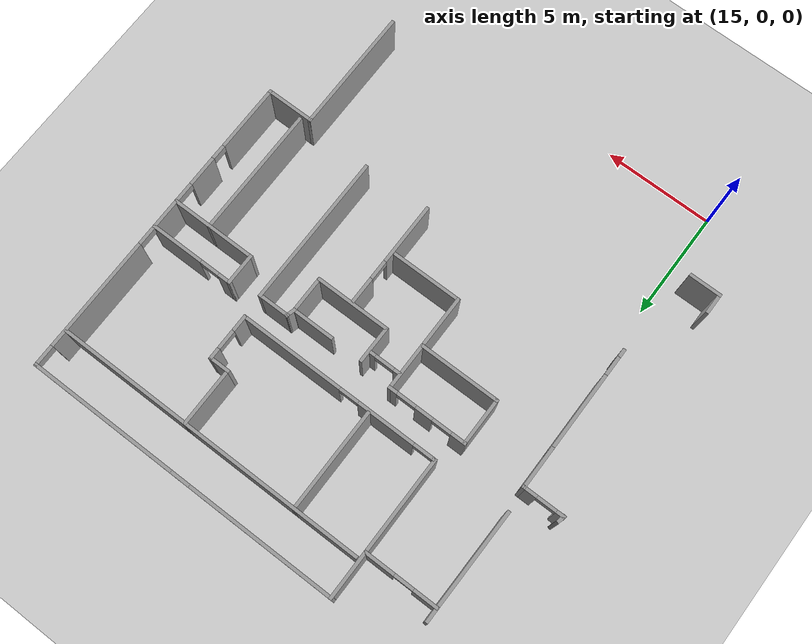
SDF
<sdf version="1.6">
 <world name="default">
  <model name="ground_plane">
   <static>1</static>
   <link name="link">
    <collision name="collision">
     <geometry><plane><normal>0 0 1</normal><size>100 100</size></plane></geometry>
     <surface><friction><ode><mu>100</mu><mu2>50</mu2></ode></friction></surface>
    </collision>
    <visual name="visual">
     <cast_shadows>0</cast_shadows>
     <geometry><plane><normal>0 0 1</normal><size>100 100</size></plane></geometry>
     <material>
      <script><uri>file://media/materials/scripts/gazebo.material</uri><name>Gazebo/Grey</name></script>
     </material>
    </visual>
   </link>
  </model>
  <model name="fin_se1f1.sdf">
   <pose>1.8125 -2.2901 0 0 -0 0</pose>
   <link name="Wall_12">
    <collision name="Wall_12_Collision">
     <geometry><box><size>5.75 0.15 2.5</size></box></geometry>
     <pose>0 0 1.25 0 -0 0</pose>
    </collision>
    <visual name="Wall_12_Visual">
     <pose>0 0 1.25 0 -0 0</pose>
     <geometry><box><size>5.75 0.15 2.5</size></box></geometry>
     <material>
      <script><uri>file://media/materials/scripts/gazebo.material</uri><name>Gazebo/Grey</name></script>
      <ambient>1 1 1 1</ambient>
     </material>
     <meta><layer>0</layer></meta>
    </visual>
    <pose>28.6504 6.82457 0 0 -0 1.5708</pose>
   </link>
   <link name="Wall_13">
    <collision name="Wall_13_Collision">
     <geometry><box><size>2.25 0.15 2.5</size></box></geometry>
     <pose>0 0 1.25 0 -0 0</pose>
    </collision>
    <visual name="Wall_13_Visual">
     <pose>0 0 1.25 0 -0 0</pose>
     <geometry><box><size>2.25 0.15 2.5</size></box></geometry>
     <material>
      <script><uri>file://media/materials/scripts/gazebo.material</uri><name>Gazebo/Grey</name></script>
      <ambient>1 1 1 1</ambient>
     </material>
     <meta><layer>0</layer></meta>
    </visual>
    <pose>29.7004 9.62457 0 0 -0 0</pose>
   </link>
   <link name="Wall_140">
    <collision name="Wall_140_Collision">
     <geometry><box><size>2 0.15 2.5</size></box></geometry>
     <pose>0 0 1.25 0 -0 0</pose>
    </collision>
    <visual name="Wall_140_Visual">
     <pose>0 0 1.25 0 -0 0</pose>
     <geometry><box><size>2 0.15 2.5</size></box></geometry>
     <material>
      <script><uri>file://media/materials/scripts/gazebo.material</uri><name>Gazebo/Grey</name></script>
      <ambient>1 1 1 1</ambient>
     </material>
     <meta><layer>0</layer></meta>
    </visual>
    <pose>12.848 15.6146 0 0 -0 1.5708</pose>
   </link>
   <link name="Wall_141">
    <pose>11.923 16.5396 0 0 -0 3.14159</pose>
    <visual name="Wall_141_Visual_0">
     <pose>-0.657066 0 1.25 0 -0 0</pose>
     <geometry><box><size>0.685867 0.15 2.5</size></box></geometry>
     <material>
      <script><uri>file://media/materials/scripts/gazebo.material</uri><name>Gazebo/Grey</name></script>
      <ambient>1 1 1 1</ambient>
     </material>
     <meta><layer>0</layer></meta>
    </visual>
    <collision name="Wall_141_Collision_0">
     <geometry><box><size>0.685867 0.15 2.5</size></box></geometry>
     <pose>-0.657066 0 1.25 0 -0 0</pose>
    </collision>
    <visual name="Wall_141_Visual_1">
     <pose>0.792934 0 1.25 0 -0 0</pose>
     <geometry><box><size>0.414133 0.15 2.5</size></box></geometry>
     <material>
      <script><uri>file://media/materials/scripts/gazebo.material</uri><name>Gazebo/Grey</name></script>
      <ambient>1 1 1 1</ambient>
     </material>
     <meta><layer>0</layer></meta>
    </visual>
    <collision name="Wall_141_Collision_1">
     <geometry><box><size>0.414133 0.15 2.5</size></box></geometry>
     <pose>0.792934 0 1.25 0 -0 0</pose>
    </collision>
    <visual name="Wall_141_Visual_2">
     <pose>0.135867 0 2.25 0 -0 0</pose>
     <geometry><box><size>0.9 0.15 0.5</size></box></geometry>
     <material>
      <script><uri>file://media/materials/scripts/gazebo.material</uri><name>Gazebo/Grey</name></script>
      <ambient>1 1 1 1</ambient>
     </material>
     <meta><layer>0</layer></meta>
    </visual>
    <collision name="Wall_141_Collision_2">
     <geometry><box><size>0.9 0.15 0.5</size></box></geometry>
     <pose>0.135867 0 2.25 0 -0 0</pose>
    </collision>
   </link>
   <link name="Wall_146">
    <collision name="Wall_146_Collision">
     <geometry><box><size>0.406976 0.15 2.5</size></box></geometry>
     <pose>0 0 1.25 0 -0 0</pose>
    </collision>
    <visual name="Wall_146_Visual">
     <pose>0 0 1.25 0 -0 0</pose>
     <geometry><box><size>0.406976 0.15 2.5</size></box></geometry>
     <material>
      <script><uri>file://media/materials/scripts/gazebo.material</uri><name>Gazebo/Grey</name></script>
      <ambient>1 1 1 1</ambient>
     </material>
     <meta><layer>0</layer></meta>
    </visual>
    <pose>11.0277 16.6646 0 0 0 -1.80434</pose>
   </link>
   <link name="Wall_16">
    <pose>30.7504 16.9246 0 0 -0 1.5708</pose>
    <visual name="Wall_16_Visual_0">
     <pose>-5.81054 0 1.25 0 -0 0</pose>
     <geometry><box><size>3.12893 0.15 2.5</size></box></geometry>
     <material>
      <script><uri>file://media/materials/scripts/gazebo.material</uri><name>Gazebo/Grey</name></script>
      <ambient>1 1 1 1</ambient>
     </material>
     <meta><layer>0</layer></meta>
    </visual>
    <collision name="Wall_16_Collision_0">
     <geometry><box><size>3.12893 0.15 2.5</size></box></geometry>
     <pose>-5.81054 0 1.25 0 -0 0</pose>
    </collision>
    <visual name="Wall_16_Visual_1">
     <pose>-2.86079 0 1.25 0 -0 0</pose>
     <geometry><box><size>1.41306 0.15 2.5</size></box></geometry>
     <material>
      <script><uri>file://media/materials/scripts/gazebo.material</uri><name>Gazebo/Grey</name></script>
      <ambient>1 1 1 1</ambient>
     </material>
     <meta><layer>0</layer></meta>
    </visual>
    <collision name="Wall_16_Collision_1">
     <geometry><box><size>1.41306 0.15 2.5</size></box></geometry>
     <pose>-2.86079 0 1.25 0 -0 0</pose>
    </collision>
    <visual name="Wall_16_Visual_2">
     <pose>-0.547733 0 1.25 0 -0 0</pose>
     <geometry><box><size>1.41306 0.15 2.5</size></box></geometry>
     <material>
      <script><uri>file://media/materials/scripts/gazebo.material</uri><name>Gazebo/Grey</name></script>
      <ambient>1 1 1 1</ambient>
     </material>
     <meta><layer>0</layer></meta>
    </visual>
    <collision name="Wall_16_Collision_2">
     <geometry><box><size>1.41306 0.15 2.5</size></box></geometry>
     <pose>-0.547733 0 1.25 0 -0 0</pose>
    </collision>
    <visual name="Wall_16_Visual_3">
     <pose>3.70629 0 1.25 0 -0 0</pose>
     <geometry><box><size>5.29498 0.15 2.5</size></box></geometry>
     <material>
      <script><uri>file://media/materials/scripts/gazebo.material</uri><name>Gazebo/Grey</name></script>
      <ambient>1 1 1 1</ambient>
     </material>
     <meta><layer>0</layer></meta>
    </visual>
    <collision name="Wall_16_Collision_3">
     <geometry><box><size>5.29498 0.15 2.5</size></box></geometry>
     <pose>3.70629 0 1.25 0 -0 0</pose>
    </collision>
    <visual name="Wall_16_Visual_4">
     <pose>7.31439 0 1.25 0 -0 0</pose>
     <geometry><box><size>0.121222 0.15 2.5</size></box></geometry>
     <material>
      <script><uri>file://media/materials/scripts/gazebo.material</uri><name>Gazebo/Grey</name></script>
      <ambient>1 1 1 1</ambient>
     </material>
     <meta><layer>0</layer></meta>
    </visual>
    <collision name="Wall_16_Collision_4">
     <geometry><box><size>0.121222 0.15 2.5</size></box></geometry>
     <pose>7.31439 0 1.25 0 -0 0</pose>
    </collision>
    <visual name="Wall_16_Visual_5">
     <pose>-3.9067 0 2.25 0 -0 0</pose>
     <geometry><box><size>0.678751 0.15 0.5</size></box></geometry>
     <material>
      <script><uri>file://media/materials/scripts/gazebo.material</uri><name>Gazebo/Grey</name></script>
      <ambient>1 1 1 1</ambient>
     </material>
     <meta><layer>0</layer></meta>
    </visual>
    <collision name="Wall_16_Collision_5">
     <geometry><box><size>0.678751 0.15 0.5</size></box></geometry>
     <pose>-3.9067 0 2.25 0 -0 0</pose>
    </collision>
    <visual name="Wall_16_Visual_6">
     <pose>-1.70426 0 2.25 0 -0 0</pose>
     <geometry><box><size>0.9 0.15 0.5</size></box></geometry>
     <material>
      <script><uri>file://media/materials/scripts/gazebo.material</uri><name>Gazebo/Grey</name></script>
      <ambient>1 1 1 1</ambient>
     </material>
     <meta><layer>0</layer></meta>
    </visual>
    <collision name="Wall_16_Collision_6">
     <geometry><box><size>0.9 0.15 0.5</size></box></geometry>
     <pose>-1.70426 0 2.25 0 -0 0</pose>
    </collision>
    <visual name="Wall_16_Visual_7">
     <pose>0.608797 0 2.25 0 -0 0</pose>
     <geometry><box><size>0.9 0.15 0.5</size></box></geometry>
     <material>
      <script><uri>file://media/materials/scripts/gazebo.material</uri><name>Gazebo/Grey</name></script>
      <ambient>1 1 1 1</ambient>
     </material>
     <meta><layer>0</layer></meta>
    </visual>
    <collision name="Wall_16_Collision_7">
     <geometry><box><size>0.9 0.15 0.5</size></box></geometry>
     <pose>0.608797 0 2.25 0 -0 0</pose>
    </collision>
    <visual name="Wall_16_Visual_8">
     <pose>6.80378 0 2.25 0 -0 0</pose>
     <geometry><box><size>0.9 0.15 0.5</size></box></geometry>
     <material>
      <script><uri>file://media/materials/scripts/gazebo.material</uri><name>Gazebo/Grey</name></script>
      <ambient>1 1 1 1</ambient>
     </material>
     <meta><layer>0</layer></meta>
    </visual>
    <collision name="Wall_16_Collision_8">
     <geometry><box><size>0.9 0.15 0.5</size></box></geometry>
     <pose>6.80378 0 2.25 0 -0 0</pose>
    </collision>
   </link>
   <link name="Wall_17">
    <pose>23.4504 24.2246 0 0 -0 3.14159</pose>
    <visual name="Wall_17_Visual_0">
     <pose>-3.90372 0 1.25 0 -0 0</pose>
     <geometry><box><size>6.94256 0.15 2.5</size></box></geometry>
     <material>
      <script><uri>file://media/materials/scripts/gazebo.material</uri><name>Gazebo/Grey</name></script>
      <ambient>1 1 1 1</ambient>
     </material>
     <meta><layer>0</layer></meta>
    </visual>
    <collision name="Wall_17_Collision_0">
     <geometry><box><size>6.94256 0.15 2.5</size></box></geometry>
     <pose>-3.90372 0 1.25 0 -0 0</pose>
    </collision>
    <visual name="Wall_17_Visual_1">
     <pose>3.92128 0 1.25 0 -0 0</pose>
     <geometry><box><size>6.90744 0.15 2.5</size></box></geometry>
     <material>
      <script><uri>file://media/materials/scripts/gazebo.material</uri><name>Gazebo/Grey</name></script>
      <ambient>1 1 1 1</ambient>
     </material>
     <meta><layer>0</layer></meta>
    </visual>
    <collision name="Wall_17_Collision_1">
     <geometry><box><size>6.90744 0.15 2.5</size></box></geometry>
     <pose>3.92128 0 1.25 0 -0 0</pose>
    </collision>
    <visual name="Wall_17_Visual_2">
     <pose>0.017557 0 2.25 0 -0 0</pose>
     <geometry><box><size>0.9 0.15 0.5</size></box></geometry>
     <material>
      <script><uri>file://media/materials/scripts/gazebo.material</uri><name>Gazebo/Grey</name></script>
      <ambient>1 1 1 1</ambient>
     </material>
     <meta><layer>0</layer></meta>
    </visual>
    <collision name="Wall_17_Collision_2">
     <geometry><box><size>0.9 0.15 0.5</size></box></geometry>
     <pose>0.017557 0 2.25 0 -0 0</pose>
    </collision>
   </link>
   <link name="Wall_18">
    <collision name="Wall_18_Collision">
     <geometry><box><size>2.25 0.15 2.5</size></box></geometry>
     <pose>0 0 1.25 0 -0 0</pose>
    </collision>
    <visual name="Wall_18_Visual">
     <pose>0 0 1.25 0 -0 0</pose>
     <geometry><box><size>2.25 0.15 2.5</size></box></geometry>
     <material>
      <script><uri>file://media/materials/scripts/gazebo.material</uri><name>Gazebo/Grey</name></script>
      <ambient>1 1 1 1</ambient>
     </material>
     <meta><layer>0</layer></meta>
    </visual>
    <pose>16.1504 23.1746 0 0 0 -1.5708</pose>
   </link>
   <link name="Wall_19">
    <pose>14.4754 22.1246 0 0 -0 3.14159</pose>
    <visual name="Wall_19_Visual_0">
     <pose>-1.03305 0 1.25 0 -0 0</pose>
     <geometry><box><size>1.43389 0.15 2.5</size></box></geometry>
     <material>
      <script><uri>file://media/materials/scripts/gazebo.material</uri><name>Gazebo/Grey</name></script>
      <ambient>1 1 1 1</ambient>
     </material>
     <meta><layer>0</layer></meta>
    </visual>
    <collision name="Wall_19_Collision_0">
     <geometry><box><size>1.43389 0.15 2.5</size></box></geometry>
     <pose>-1.03305 0 1.25 0 -0 0</pose>
    </collision>
    <visual name="Wall_19_Visual_1">
     <pose>1.16695 0 1.25 0 -0 0</pose>
     <geometry><box><size>1.16611 0.15 2.5</size></box></geometry>
     <material>
      <script><uri>file://media/materials/scripts/gazebo.material</uri><name>Gazebo/Grey</name></script>
      <ambient>1 1 1 1</ambient>
     </material>
     <meta><layer>0</layer></meta>
    </visual>
    <collision name="Wall_19_Collision_1">
     <geometry><box><size>1.16611 0.15 2.5</size></box></geometry>
     <pose>1.16695 0 1.25 0 -0 0</pose>
    </collision>
    <visual name="Wall_19_Visual_2">
     <pose>0.133892 0 2.25 0 -0 0</pose>
     <geometry><box><size>0.9 0.15 0.5</size></box></geometry>
     <material>
      <script><uri>file://media/materials/scripts/gazebo.material</uri><name>Gazebo/Grey</name></script>
      <ambient>1 1 1 1</ambient>
     </material>
     <meta><layer>0</layer></meta>
    </visual>
    <collision name="Wall_19_Collision_2">
     <geometry><box><size>0.9 0.15 0.5</size></box></geometry>
     <pose>0.133892 0 2.25 0 -0 0</pose>
    </collision>
   </link>
   <link name="Wall_2">
    <collision name="Wall_2_Collision">
     <geometry><box><size>1 0.15 2.5</size></box></geometry>
     <pose>0 0 1.25 0 -0 0</pose>
    </collision>
    <visual name="Wall_2_Visual">
     <pose>0 0 1.25 0 -0 0</pose>
     <geometry><box><size>1 0.15 2.5</size></box></geometry>
     <material>
      <script><uri>file://media/materials/scripts/gazebo.material</uri><name>Gazebo/Grey</name></script>
      <ambient>1 1 1 1</ambient>
     </material>
     <meta><layer>0</layer></meta>
    </visual>
    <pose>11.1004 6.09957 0 0 0 -1.5708</pose>
   </link>
   <link name="Wall_20">
    <collision name="Wall_20_Collision">
     <geometry><box><size>0.75 0.15 2.5</size></box></geometry>
     <pose>0 0 1.25 0 -0 0</pose>
    </collision>
    <visual name="Wall_20_Visual">
     <pose>0 0 1.25 0 -0 0</pose>
     <geometry><box><size>0.75 0.15 2.5</size></box></geometry>
     <material>
      <script><uri>file://media/materials/scripts/gazebo.material</uri><name>Gazebo/Grey</name></script>
      <ambient>1 1 1 1</ambient>
     </material>
     <meta><layer>0</layer></meta>
    </visual>
    <pose>12.8004 22.4246 0 0 -0 1.5708</pose>
   </link>
   <link name="Wall_233">
    <pose>19.9645 15.9042 0 0 -0 0</pose>
    <visual name="Wall_233_Visual_0">
     <pose>-0.585512 0 1.25 0 -0 0</pose>
     <geometry><box><size>0.328976 0.15 2.5</size></box></geometry>
     <material>
      <script><uri>file://media/materials/scripts/gazebo.material</uri><name>Gazebo/Grey</name></script>
      <ambient>1 1 1 1</ambient>
     </material>
     <meta><layer>0</layer></meta>
    </visual>
    <collision name="Wall_233_Collision_0">
     <geometry><box><size>0.328976 0.15 2.5</size></box></geometry>
     <pose>-0.585512 0 1.25 0 -0 0</pose>
    </collision>
    <visual name="Wall_233_Visual_1">
     <pose>0.614488 0 1.25 0 -0 0</pose>
     <geometry><box><size>0.271024 0.15 2.5</size></box></geometry>
     <material>
      <script><uri>file://media/materials/scripts/gazebo.material</uri><name>Gazebo/Grey</name></script>
      <ambient>1 1 1 1</ambient>
     </material>
     <meta><layer>0</layer></meta>
    </visual>
    <collision name="Wall_233_Collision_1">
     <geometry><box><size>0.271024 0.15 2.5</size></box></geometry>
     <pose>0.614488 0 1.25 0 -0 0</pose>
    </collision>
    <visual name="Wall_233_Visual_2">
     <pose>0.028976 0 2.25 0 -0 0</pose>
     <geometry><box><size>0.9 0.15 0.5</size></box></geometry>
     <material>
      <script><uri>file://media/materials/scripts/gazebo.material</uri><name>Gazebo/Grey</name></script>
      <ambient>1 1 1 1</ambient>
     </material>
     <meta><layer>0</layer></meta>
    </visual>
    <collision name="Wall_233_Collision_2">
     <geometry><box><size>0.9 0.15 0.5</size></box></geometry>
     <pose>0.028976 0 2.25 0 -0 0</pose>
    </collision>
   </link>
   <link name="Wall_3">
    <collision name="Wall_3_Collision">
     <geometry><box><size>1.5 0.15 2.5</size></box></geometry>
     <pose>0 0 1.25 0 -0 0</pose>
    </collision>
    <visual name="Wall_3_Visual">
     <pose>0 0 1.25 0 -0 0</pose>
     <geometry><box><size>1.5 0.15 2.5</size></box></geometry>
     <material>
      <script><uri>file://media/materials/scripts/gazebo.material</uri><name>Gazebo/Grey</name></script>
      <ambient>1 1 1 1</ambient>
     </material>
     <meta><layer>0</layer></meta>
    </visual>
    <pose>11.7754 5.67457 0 0 -0 0</pose>
   </link>
   <link name="Wall_32">
    <collision name="Wall_32_Collision">
     <geometry><box><size>4 0.15 2.5</size></box></geometry>
     <pose>0 0 1.25 0 -0 0</pose>
    </collision>
    <visual name="Wall_32_Visual">
     <pose>0 0 1.25 0 -0 0</pose>
     <geometry><box><size>4 0.15 2.5</size></box></geometry>
     <material>
      <script><uri>file://media/materials/scripts/gazebo.material</uri><name>Gazebo/Grey</name></script>
      <ambient>1 1 1 1</ambient>
     </material>
     <meta><layer>0</layer></meta>
    </visual>
    <pose>28.8116 15.7048 0 0 -0 3.14159</pose>
   </link>
   <link name="Wall_33">
    <collision name="Wall_33_Collision">
     <geometry><box><size>1.5 0.15 2.5</size></box></geometry>
     <pose>0 0 1.25 0 -0 0</pose>
    </collision>
    <visual name="Wall_33_Visual">
     <pose>0 0 1.25 0 -0 0</pose>
     <geometry><box><size>1.5 0.15 2.5</size></box></geometry>
     <material>
      <script><uri>file://media/materials/scripts/gazebo.material</uri><name>Gazebo/Grey</name></script>
      <ambient>1 1 1 1</ambient>
     </material>
     <meta><layer>0</layer></meta>
    </visual>
    <pose>26.8866 16.3798 0 0 -0 1.5708</pose>
   </link>
   <link name="Wall_34">
    <pose>28.8116 17.0548 0 0 -0 0</pose>
    <visual name="Wall_34_Visual_0">
     <pose>-1.6918 0 1.25 0 -0 0</pose>
     <geometry><box><size>0.616404 0.15 2.5</size></box></geometry>
     <material>
      <script><uri>file://media/materials/scripts/gazebo.material</uri><name>Gazebo/Grey</name></script>
      <ambient>1 1 1 1</ambient>
     </material>
     <meta><layer>0</layer></meta>
    </visual>
    <collision name="Wall_34_Collision_0">
     <geometry><box><size>0.616404 0.15 2.5</size></box></geometry>
     <pose>-1.6918 0 1.25 0 -0 0</pose>
    </collision>
    <visual name="Wall_34_Visual_1">
     <pose>0.758202 0 1.25 0 -0 0</pose>
     <geometry><box><size>2.4836 0.15 2.5</size></box></geometry>
     <material>
      <script><uri>file://media/materials/scripts/gazebo.material</uri><name>Gazebo/Grey</name></script>
      <ambient>1 1 1 1</ambient>
     </material>
     <meta><layer>0</layer></meta>
    </visual>
    <collision name="Wall_34_Collision_1">
     <geometry><box><size>2.4836 0.15 2.5</size></box></geometry>
     <pose>0.758202 0 1.25 0 -0 0</pose>
    </collision>
    <visual name="Wall_34_Visual_2">
     <pose>-0.933596 0 2.25 0 -0 0</pose>
     <geometry><box><size>0.9 0.15 0.5</size></box></geometry>
     <material>
      <script><uri>file://media/materials/scripts/gazebo.material</uri><name>Gazebo/Grey</name></script>
      <ambient>1 1 1 1</ambient>
     </material>
     <meta><layer>0</layer></meta>
    </visual>
    <collision name="Wall_34_Collision_2">
     <geometry><box><size>0.9 0.15 0.5</size></box></geometry>
     <pose>-0.933596 0 2.25 0 -0 0</pose>
    </collision>
   </link>
   <link name="Wall_36">
    <collision name="Wall_36_Collision">
     <geometry><box><size>6 0.15 2.5</size></box></geometry>
     <pose>0 0 1.25 0 -0 0</pose>
    </collision>
    <visual name="Wall_36_Visual">
     <pose>0 0 1.25 0 -0 0</pose>
     <geometry><box><size>6 0.15 2.5</size></box></geometry>
     <material>
      <script><uri>file://media/materials/scripts/gazebo.material</uri><name>Gazebo/Grey</name></script>
      <ambient>1 1 1 1</ambient>
     </material>
     <meta><layer>0</layer></meta>
    </visual>
    <pose>29.0138 12.7798 0 0 0 -1.5708</pose>
   </link>
   <link name="Wall_38">
    <pose>17.4309 16.5662 0 0 -0 3.14159</pose>
    <visual name="Wall_38_Visual_0">
     <pose>-1.65937 0 1.25 0 -0 0</pose>
     <geometry><box><size>0.431262 0.15 2.5</size></box></geometry>
     <material>
      <script><uri>file://media/materials/scripts/gazebo.material</uri><name>Gazebo/Grey</name></script>
      <ambient>1 1 1 1</ambient>
     </material>
     <meta><layer>0</layer></meta>
    </visual>
    <collision name="Wall_38_Collision_0">
     <geometry><box><size>0.431262 0.15 2.5</size></box></geometry>
     <pose>-1.65937 0 1.25 0 -0 0</pose>
    </collision>
    <visual name="Wall_38_Visual_1">
     <pose>-0.138911 0 1.25 0 -0 0</pose>
     <geometry><box><size>0.809654 0.15 2.5</size></box></geometry>
     <material>
      <script><uri>file://media/materials/scripts/gazebo.material</uri><name>Gazebo/Grey</name></script>
      <ambient>1 1 1 1</ambient>
     </material>
     <meta><layer>0</layer></meta>
    </visual>
    <collision name="Wall_38_Collision_1">
     <geometry><box><size>0.809654 0.15 2.5</size></box></geometry>
     <pose>-0.138911 0 1.25 0 -0 0</pose>
    </collision>
    <visual name="Wall_38_Visual_2">
     <pose>1.52046 0 1.25 0 -0 0</pose>
     <geometry><box><size>0.709084 0.15 2.5</size></box></geometry>
     <material>
      <script><uri>file://media/materials/scripts/gazebo.material</uri><name>Gazebo/Grey</name></script>
      <ambient>1 1 1 1</ambient>
     </material>
     <meta><layer>0</layer></meta>
    </visual>
    <collision name="Wall_38_Collision_2">
     <geometry><box><size>0.709084 0.15 2.5</size></box></geometry>
     <pose>1.52046 0 1.25 0 -0 0</pose>
    </collision>
    <visual name="Wall_38_Visual_3">
     <pose>-0.993738 0 2.25 0 -0 0</pose>
     <geometry><box><size>0.9 0.15 0.5</size></box></geometry>
     <material>
      <script><uri>file://media/materials/scripts/gazebo.material</uri><name>Gazebo/Grey</name></script>
      <ambient>1 1 1 1</ambient>
     </material>
     <meta><layer>0</layer></meta>
    </visual>
    <collision name="Wall_38_Collision_3">
     <geometry><box><size>0.9 0.15 0.5</size></box></geometry>
     <pose>-0.993738 0 2.25 0 -0 0</pose>
    </collision>
    <visual name="Wall_38_Visual_4">
     <pose>0.715916 0 2.25 0 -0 0</pose>
     <geometry><box><size>0.9 0.15 0.5</size></box></geometry>
     <material>
      <script><uri>file://media/materials/scripts/gazebo.material</uri><name>Gazebo/Grey</name></script>
      <ambient>1 1 1 1</ambient>
     </material>
     <meta><layer>0</layer></meta>
    </visual>
    <collision name="Wall_38_Collision_4">
     <geometry><box><size>0.9 0.15 0.5</size></box></geometry>
     <pose>0.715916 0 2.25 0 -0 0</pose>
    </collision>
   </link>
   <link name="Wall_39">
    <collision name="Wall_39_Collision">
     <geometry><box><size>2.25 0.15 2.5</size></box></geometry>
     <pose>0 0 1.25 0 -0 0</pose>
    </collision>
    <visual name="Wall_39_Visual">
     <pose>0 0 1.25 0 -0 0</pose>
     <geometry><box><size>2.25 0.15 2.5</size></box></geometry>
     <material>
      <script><uri>file://media/materials/scripts/gazebo.material</uri><name>Gazebo/Grey</name></script>
      <ambient>1 1 1 1</ambient>
     </material>
     <meta><layer>0</layer></meta>
    </visual>
    <pose>15.6309 15.5162 0 0 0 -1.5708</pose>
   </link>
   <link name="Wall_40">
    <collision name="Wall_40_Collision">
     <geometry><box><size>3.75 0.15 2.5</size></box></geometry>
     <pose>0 0 1.25 0 -0 0</pose>
    </collision>
    <visual name="Wall_40_Visual">
     <pose>0 0 1.25 0 -0 0</pose>
     <geometry><box><size>3.75 0.15 2.5</size></box></geometry>
     <material>
      <script><uri>file://media/materials/scripts/gazebo.material</uri><name>Gazebo/Grey</name></script>
      <ambient>1 1 1 1</ambient>
     </material>
     <meta><layer>0</layer></meta>
    </visual>
    <pose>17.4309 14.4662 0 0 -0 0</pose>
   </link>
   <link name="Wall_41">
    <collision name="Wall_41_Collision">
     <geometry><box><size>2.25 0.15 2.5</size></box></geometry>
     <pose>0 0 1.25 0 -0 0</pose>
    </collision>
    <visual name="Wall_41_Visual">
     <pose>0 0 1.25 0 -0 0</pose>
     <geometry><box><size>2.25 0.15 2.5</size></box></geometry>
     <material>
      <script><uri>file://media/materials/scripts/gazebo.material</uri><name>Gazebo/Grey</name></script>
      <ambient>1 1 1 1</ambient>
     </material>
     <meta><layer>0</layer></meta>
    </visual>
    <pose>19.2309 15.5162 0 0 -0 1.5708</pose>
   </link>
   <link name="Wall_43">
    <collision name="Wall_43_Collision">
     <geometry><box><size>1.75 0.15 2.5</size></box></geometry>
     <pose>0 0 1.25 0 -0 0</pose>
    </collision>
    <visual name="Wall_43_Visual">
     <pose>0 0 1.25 0 -0 0</pose>
     <geometry><box><size>1.75 0.15 2.5</size></box></geometry>
     <material>
      <script><uri>file://media/materials/scripts/gazebo.material</uri><name>Gazebo/Grey</name></script>
      <ambient>1 1 1 1</ambient>
     </material>
     <meta><layer>0</layer></meta>
    </visual>
    <pose>20.7691 15.5816 0 0 0 -1.5708</pose>
   </link>
   <link name="Wall_44">
    <collision name="Wall_44_Collision">
     <geometry><box><size>3.5 0.15 2.5</size></box></geometry>
     <pose>0 0 1.25 0 -0 0</pose>
    </collision>
    <visual name="Wall_44_Visual">
     <pose>0 0 1.25 0 -0 0</pose>
     <geometry><box><size>3.5 0.15 2.5</size></box></geometry>
     <material>
      <script><uri>file://media/materials/scripts/gazebo.material</uri><name>Gazebo/Grey</name></script>
      <ambient>1 1 1 1</ambient>
     </material>
     <meta><layer>0</layer></meta>
    </visual>
    <pose>22.4441 14.7816 0 0 -0 0</pose>
   </link>
   <link name="Wall_45">
    <collision name="Wall_45_Collision">
     <geometry><box><size>1.75 0.15 2.5</size></box></geometry>
     <pose>0 0 1.25 0 -0 0</pose>
    </collision>
    <visual name="Wall_45_Visual">
     <pose>0 0 1.25 0 -0 0</pose>
     <geometry><box><size>1.75 0.15 2.5</size></box></geometry>
     <material>
      <script><uri>file://media/materials/scripts/gazebo.material</uri><name>Gazebo/Grey</name></script>
      <ambient>1 1 1 1</ambient>
     </material>
     <meta><layer>0</layer></meta>
    </visual>
    <pose>24.1191 15.5816 0 0 -0 1.5708</pose>
   </link>
   <link name="Wall_46">
    <collision name="Wall_46_Collision">
     <geometry><box><size>2 0.15 2.5</size></box></geometry>
     <pose>0 0 1.25 0 -0 0</pose>
    </collision>
    <visual name="Wall_46_Visual">
     <pose>0 0 1.25 0 -0 0</pose>
     <geometry><box><size>2 0.15 2.5</size></box></geometry>
     <material>
      <script><uri>file://media/materials/scripts/gazebo.material</uri><name>Gazebo/Grey</name></script>
      <ambient>1 1 1 1</ambient>
     </material>
     <meta><layer>0</layer></meta>
    </visual>
    <pose>23.1941 16.3816 0 0 -0 3.14159</pose>
   </link>
   <link name="Wall_48">
    <collision name="Wall_48_Collision">
     <geometry><box><size>0.5 0.15 2.5</size></box></geometry>
     <pose>0 0 1.25 0 -0 0</pose>
    </collision>
    <visual name="Wall_48_Visual">
     <pose>0 0 1.25 0 -0 0</pose>
     <geometry><box><size>0.5 0.15 2.5</size></box></geometry>
     <material>
      <script><uri>file://media/materials/scripts/gazebo.material</uri><name>Gazebo/Grey</name></script>
      <ambient>1 1 1 1</ambient>
     </material>
     <meta><layer>0</layer></meta>
    </visual>
    <pose>24.1643 16.5507 0 0 -0 1.309</pose>
   </link>
   <link name="Wall_49">
    <collision name="Wall_49_Collision">
     <geometry><box><size>1.5 0.15 2.5</size></box></geometry>
     <pose>0 0 1.25 0 -0 0</pose>
    </collision>
    <visual name="Wall_49_Visual">
     <pose>0 0 1.25 0 -0 0</pose>
     <geometry><box><size>1.5 0.15 2.5</size></box></geometry>
     <material>
      <script><uri>file://media/materials/scripts/gazebo.material</uri><name>Gazebo/Grey</name></script>
      <ambient>1 1 1 1</ambient>
     </material>
     <meta><layer>0</layer></meta>
    </visual>
    <pose>24.8846 16.7197 0 0 -0 0</pose>
   </link>
   <link name="Wall_50">
    <collision name="Wall_50_Collision">
     <geometry><box><size>7 0.15 2.5</size></box></geometry>
     <pose>0 0 1.25 0 -0 0</pose>
    </collision>
    <visual name="Wall_50_Visual">
     <pose>0 0 1.25 0 -0 0</pose>
     <geometry><box><size>7 0.15 2.5</size></box></geometry>
     <material>
      <script><uri>file://media/materials/scripts/gazebo.material</uri><name>Gazebo/Grey</name></script>
      <ambient>1 1 1 1</ambient>
     </material>
     <meta><layer>0</layer></meta>
    </visual>
    <pose>25.5596 13.2947 0 0 0 -1.5708</pose>
   </link>
   <link name="Wall_52">
    <collision name="Wall_52_Collision">
     <geometry><box><size>2.5 0.15 2.5</size></box></geometry>
     <pose>0 0 1.25 0 -0 0</pose>
    </collision>
    <visual name="Wall_52_Visual">
     <pose>0 0 1.25 0 -0 0</pose>
     <geometry><box><size>2.5 0.15 2.5</size></box></geometry>
     <material>
      <script><uri>file://media/materials/scripts/gazebo.material</uri><name>Gazebo/Grey</name></script>
      <ambient>1 1 1 1</ambient>
     </material>
     <meta><layer>0</layer></meta>
    </visual>
    <pose>19.2309 13.2912 0 0 0 -1.5708</pose>
   </link>
   <link name="Wall_53">
    <collision name="Wall_53_Collision">
     <geometry><box><size>3.25 0.15 2.5</size></box></geometry>
     <pose>0 0 1.25 0 -0 0</pose>
    </collision>
    <visual name="Wall_53_Visual">
     <pose>0 0 1.25 0 -0 0</pose>
     <geometry><box><size>3.25 0.15 2.5</size></box></geometry>
     <material>
      <script><uri>file://media/materials/scripts/gazebo.material</uri><name>Gazebo/Grey</name></script>
      <ambient>1 1 1 1</ambient>
     </material>
     <meta><layer>0</layer></meta>
    </visual>
    <pose>20.7809 12.1162 0 0 -0 0</pose>
   </link>
   <link name="Wall_55">
    <pose>22.4918 12.2338 0 0 0 -1.5708</pose>
    <visual name="Wall_55_Visual_0">
     <pose>-1.8821 0 1.25 0 -0 0</pose>
     <geometry><box><size>1.2358 0.15 2.5</size></box></geometry>
     <material>
      <script><uri>file://media/materials/scripts/gazebo.material</uri><name>Gazebo/Grey</name></script>
      <ambient>1 1 1 1</ambient>
     </material>
     <meta><layer>0</layer></meta>
    </visual>
    <collision name="Wall_55_Collision_0">
     <geometry><box><size>1.2358 0.15 2.5</size></box></geometry>
     <pose>-1.8821 0 1.25 0 -0 0</pose>
    </collision>
    <visual name="Wall_55_Visual_1">
     <pose>1.0679 0 1.25 0 -0 0</pose>
     <geometry><box><size>2.8642 0.15 2.5</size></box></geometry>
     <material>
      <script><uri>file://media/materials/scripts/gazebo.material</uri><name>Gazebo/Grey</name></script>
      <ambient>1 1 1 1</ambient>
     </material>
     <meta><layer>0</layer></meta>
    </visual>
    <collision name="Wall_55_Collision_1">
     <geometry><box><size>2.8642 0.15 2.5</size></box></geometry>
     <pose>1.0679 0 1.25 0 -0 0</pose>
    </collision>
    <visual name="Wall_55_Visual_2">
     <pose>-0.814197 0 2.25 0 -0 0</pose>
     <geometry><box><size>0.9 0.15 0.5</size></box></geometry>
     <material>
      <script><uri>file://media/materials/scripts/gazebo.material</uri><name>Gazebo/Grey</name></script>
      <ambient>1 1 1 1</ambient>
     </material>
     <meta><layer>0</layer></meta>
    </visual>
    <collision name="Wall_55_Collision_2">
     <geometry><box><size>0.9 0.15 0.5</size></box></geometry>
     <pose>-0.814197 0 2.25 0 -0 0</pose>
    </collision>
   </link>
   <link name="Wall_57">
    <collision name="Wall_57_Collision">
     <geometry><box><size>4.5 0.15 2.5</size></box></geometry>
     <pose>0 0 1.25 0 -0 0</pose>
    </collision>
    <visual name="Wall_57_Visual">
     <pose>0 0 1.25 0 -0 0</pose>
     <geometry><box><size>4.5 0.15 2.5</size></box></geometry>
     <material>
      <script><uri>file://media/materials/scripts/gazebo.material</uri><name>Gazebo/Grey</name></script>
      <ambient>1 1 1 1</ambient>
     </material>
     <meta><layer>0</layer></meta>
    </visual>
    <pose>16.1504 19.9496 0 0 0 -1.5708</pose>
   </link>
   <link name="Wall_58">
    <pose>20.8254 17.7746 0 0 -0 0</pose>
    <visual name="Wall_58_Visual_0">
     <pose>-4.65524 0 1.25 0 -0 0</pose>
     <geometry><box><size>0.189509 0.15 2.5</size></box></geometry>
     <material>
      <script><uri>file://media/materials/scripts/gazebo.material</uri><name>Gazebo/Grey</name></script>
      <ambient>1 1 1 1</ambient>
     </material>
     <meta><layer>0</layer></meta>
    </visual>
    <collision name="Wall_58_Collision_0">
     <geometry><box><size>0.189509 0.15 2.5</size></box></geometry>
     <pose>-4.65524 0 1.25 0 -0 0</pose>
    </collision>
    <visual name="Wall_58_Visual_1">
     <pose>-2.32038 0 1.25 0 -0 0</pose>
     <geometry><box><size>2.68022 0.15 2.5</size></box></geometry>
     <material>
      <script><uri>file://media/materials/scripts/gazebo.material</uri><name>Gazebo/Grey</name></script>
      <ambient>1 1 1 1</ambient>
     </material>
     <meta><layer>0</layer></meta>
    </visual>
    <collision name="Wall_58_Collision_1">
     <geometry><box><size>2.68022 0.15 2.5</size></box></geometry>
     <pose>-2.32038 0 1.25 0 -0 0</pose>
    </collision>
    <visual name="Wall_58_Visual_2">
     <pose>2.33486 0 1.25 0 -0 0</pose>
     <geometry><box><size>4.83028 0.15 2.5</size></box></geometry>
     <material>
      <script><uri>file://media/materials/scripts/gazebo.material</uri><name>Gazebo/Grey</name></script>
      <ambient>1 1 1 1</ambient>
     </material>
     <meta><layer>0</layer></meta>
    </visual>
    <collision name="Wall_58_Collision_2">
     <geometry><box><size>4.83028 0.15 2.5</size></box></geometry>
     <pose>2.33486 0 1.25 0 -0 0</pose>
    </collision>
    <visual name="Wall_58_Visual_3">
     <pose>-4.11049 0 2.25 0 -0 0</pose>
     <geometry><box><size>0.9 0.15 0.5</size></box></geometry>
     <material>
      <script><uri>file://media/materials/scripts/gazebo.material</uri><name>Gazebo/Grey</name></script>
      <ambient>1 1 1 1</ambient>
     </material>
     <meta><layer>0</layer></meta>
    </visual>
    <collision name="Wall_58_Collision_3">
     <geometry><box><size>0.9 0.15 0.5</size></box></geometry>
     <pose>-4.11049 0 2.25 0 -0 0</pose>
    </collision>
    <visual name="Wall_58_Visual_4">
     <pose>-0.530275 0 2.25 0 -0 0</pose>
     <geometry><box><size>0.9 0.15 0.5</size></box></geometry>
     <material>
      <script><uri>file://media/materials/scripts/gazebo.material</uri><name>Gazebo/Grey</name></script>
      <ambient>1 1 1 1</ambient>
     </material>
     <meta><layer>0</layer></meta>
    </visual>
    <collision name="Wall_58_Collision_4">
     <geometry><box><size>0.9 0.15 0.5</size></box></geometry>
     <pose>-0.530275 0 2.25 0 -0 0</pose>
    </collision>
   </link>
   <link name="Wall_59">
    <pose>25.5004 18.8246 0 0 -0 1.5708</pose>
    <visual name="Wall_59_Visual_0">
     <pose>-0.729127 0 1.25 0 -0 0</pose>
     <geometry><box><size>0.791747 0.15 2.5</size></box></geometry>
     <material>
      <script><uri>file://media/materials/scripts/gazebo.material</uri><name>Gazebo/Grey</name></script>
      <ambient>1 1 1 1</ambient>
     </material>
     <meta><layer>0</layer></meta>
    </visual>
    <collision name="Wall_59_Collision_0">
     <geometry><box><size>0.791747 0.15 2.5</size></box></geometry>
     <pose>-0.729127 0 1.25 0 -0 0</pose>
    </collision>
    <visual name="Wall_59_Visual_1">
     <pose>0.845873 0 1.25 0 -0 0</pose>
     <geometry><box><size>0.558253 0.15 2.5</size></box></geometry>
     <material>
      <script><uri>file://media/materials/scripts/gazebo.material</uri><name>Gazebo/Grey</name></script>
      <ambient>1 1 1 1</ambient>
     </material>
     <meta><layer>0</layer></meta>
    </visual>
    <collision name="Wall_59_Collision_1">
     <geometry><box><size>0.558253 0.15 2.5</size></box></geometry>
     <pose>0.845873 0 1.25 0 -0 0</pose>
    </collision>
    <visual name="Wall_59_Visual_2">
     <pose>0.116747 0 2.25 0 -0 0</pose>
     <geometry><box><size>0.9 0.15 0.5</size></box></geometry>
     <material>
      <script><uri>file://media/materials/scripts/gazebo.material</uri><name>Gazebo/Grey</name></script>
      <ambient>1 1 1 1</ambient>
     </material>
     <meta><layer>0</layer></meta>
    </visual>
    <collision name="Wall_59_Collision_2">
     <geometry><box><size>0.9 0.15 0.5</size></box></geometry>
     <pose>0.116747 0 2.25 0 -0 0</pose>
    </collision>
   </link>
   <link name="Wall_60">
    <collision name="Wall_60_Collision">
     <geometry><box><size>1 0.15 2.5</size></box></geometry>
     <pose>0 0 1.25 0 -0 0</pose>
    </collision>
    <visual name="Wall_60_Visual">
     <pose>0 0 1.25 0 -0 0</pose>
     <geometry><box><size>1 0.15 2.5</size></box></geometry>
     <material>
      <script><uri>file://media/materials/scripts/gazebo.material</uri><name>Gazebo/Grey</name></script>
      <ambient>1 1 1 1</ambient>
     </material>
     <meta><layer>0</layer></meta>
    </visual>
    <pose>25.0754 19.8746 0 0 -0 3.14159</pose>
   </link>
   <link name="Wall_61">
    <collision name="Wall_61_Collision">
     <geometry><box><size>2.75 0.15 2.5</size></box></geometry>
     <pose>0 0 1.25 0 -0 0</pose>
    </collision>
    <visual name="Wall_61_Visual">
     <pose>0 0 1.25 0 -0 0</pose>
     <geometry><box><size>2.75 0.15 2.5</size></box></geometry>
     <material>
      <script><uri>file://media/materials/scripts/gazebo.material</uri><name>Gazebo/Grey</name></script>
      <ambient>1 1 1 1</ambient>
     </material>
     <meta><layer>0</layer></meta>
    </visual>
    <pose>24.6504 21.1746 0 0 -0 1.5708</pose>
   </link>
   <link name="Wall_63">
    <collision name="Wall_63_Collision">
     <geometry><box><size>14.5 0.15 2.5</size></box></geometry>
     <pose>0 0 1.25 0 -0 0</pose>
    </collision>
    <visual name="Wall_63_Visual">
     <pose>0 0 1.25 0 -0 0</pose>
     <geometry><box><size>14.5 0.15 2.5</size></box></geometry>
     <material>
      <script><uri>file://media/materials/scripts/gazebo.material</uri><name>Gazebo/Grey</name></script>
      <ambient>1 1 1 1</ambient>
     </material>
     <meta><layer>0</layer></meta>
    </visual>
    <pose>23.514 22.4729 0 0 -0 0</pose>
   </link>
   <link name="Wall_65">
    <collision name="Wall_65_Collision">
     <geometry><box><size>4.75 0.15 2.5</size></box></geometry>
     <pose>0 0 1.25 0 -0 0</pose>
    </collision>
    <visual name="Wall_65_Visual">
     <pose>0 0 1.25 0 -0 0</pose>
     <geometry><box><size>4.75 0.15 2.5</size></box></geometry>
     <material>
      <script><uri>file://media/materials/scripts/gazebo.material</uri><name>Gazebo/Grey</name></script>
      <ambient>1 1 1 1</ambient>
     </material>
     <meta><layer>0</layer></meta>
    </visual>
    <pose>19.2924 20.1729 0 0 0 -1.5708</pose>
   </link>
   <link name="Wall_70">
    <collision name="Wall_70_Collision">
     <geometry><box><size>4.60106 0.15 2.5</size></box></geometry>
     <pose>0 0 1.25 0 -0 0</pose>
    </collision>
    <visual name="Wall_70_Visual">
     <pose>0 0 1.25 0 -0 0</pose>
     <geometry><box><size>4.60106 0.15 2.5</size></box></geometry>
     <material>
      <script><uri>file://media/materials/scripts/gazebo.material</uri><name>Gazebo/Grey</name></script>
      <ambient>1 1 1 1</ambient>
     </material>
     <meta><layer>0</layer></meta>
    </visual>
    <pose>12.7793 19.8991 0 0 -0 1.5613</pose>
   </link>
   <link name="Wall_89">
    <pose>12.848 12.2646 0 0 0 -1.5708</pose>
    <visual name="Wall_89_Visual_0">
     <pose>-0.649847 0 1.25 0 -0 0</pose>
     <geometry><box><size>3.70031 0.15 2.5</size></box></geometry>
     <material>
      <script><uri>file://media/materials/scripts/gazebo.material</uri><name>Gazebo/Grey</name></script>
      <ambient>1 1 1 1</ambient>
     </material>
     <meta><layer>0</layer></meta>
    </visual>
    <collision name="Wall_89_Collision_0">
     <geometry><box><size>3.70031 0.15 2.5</size></box></geometry>
     <pose>-0.649847 0 1.25 0 -0 0</pose>
    </collision>
    <visual name="Wall_89_Visual_1">
     <pose>2.30015 0 1.25 0 -0 0</pose>
     <geometry><box><size>0.399694 0.15 2.5</size></box></geometry>
     <material>
      <script><uri>file://media/materials/scripts/gazebo.material</uri><name>Gazebo/Grey</name></script>
      <ambient>1 1 1 1</ambient>
     </material>
     <meta><layer>0</layer></meta>
    </visual>
    <collision name="Wall_89_Collision_1">
     <geometry><box><size>0.399694 0.15 2.5</size></box></geometry>
     <pose>2.30015 0 1.25 0 -0 0</pose>
    </collision>
    <visual name="Wall_89_Visual_2">
     <pose>1.65031 0 2.25 0 -0 0</pose>
     <geometry><box><size>0.9 0.15 0.5</size></box></geometry>
     <material>
      <script><uri>file://media/materials/scripts/gazebo.material</uri><name>Gazebo/Grey</name></script>
      <ambient>1 1 1 1</ambient>
     </material>
     <meta><layer>0</layer></meta>
    </visual>
    <collision name="Wall_89_Collision_2">
     <geometry><box><size>0.9 0.15 0.5</size></box></geometry>
     <pose>1.65031 0 2.25 0 -0 0</pose>
    </collision>
   </link>
   <static>1</static>
  </model>
 </world>
</sdf>
